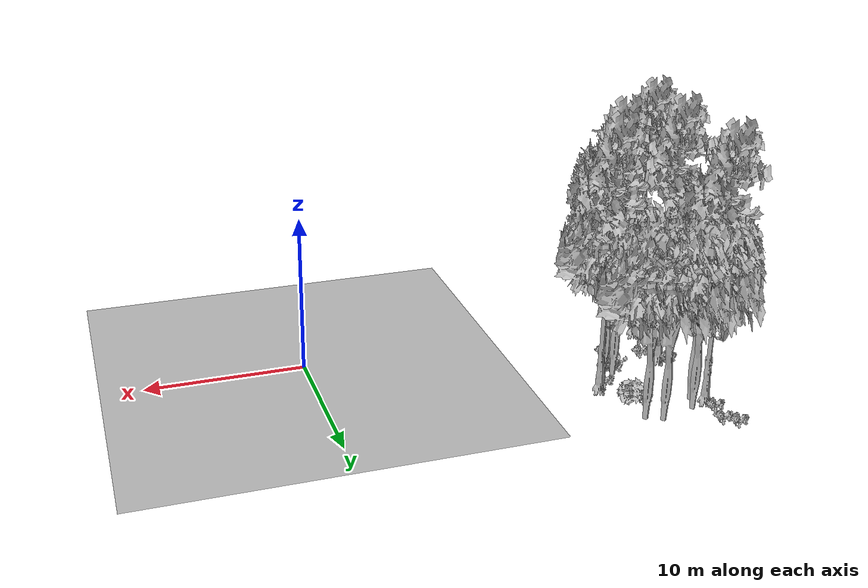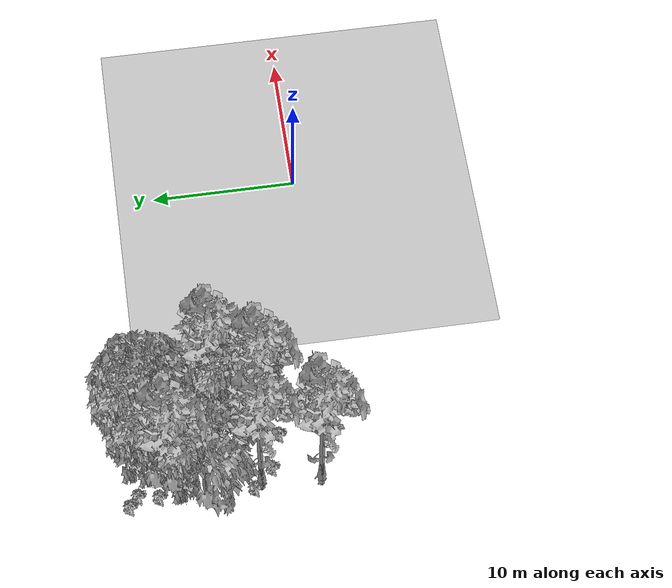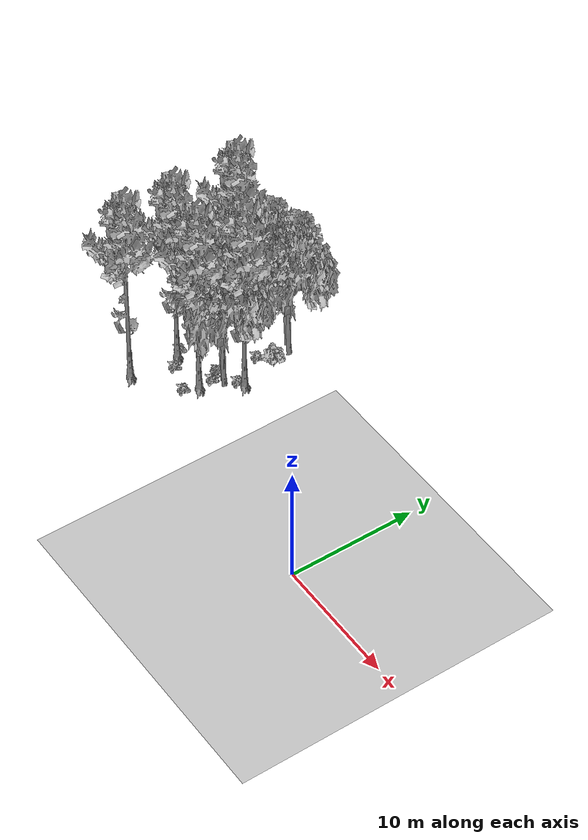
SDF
<sdf version="1.7">
 <world name="default">
  <model name="ground_plane">
   <static>1</static>
   <link name="link">
    <collision name="collision">
     <pose>-50 0 0 0 -0 0</pose>
     <geometry><plane><normal>0 0 1</normal><size>80 80</size></plane></geometry>
     <surface><contact><ode><min_depth>0.01</min_depth><max_vel>0</max_vel></ode></contact></surface>
    </collision>
    <visual name="grass">
     <cast_shadows>0</cast_shadows>
     <geometry>
      <mesh>
       <scale>0.46714285714285714 0.46714285714285714 0.1</scale>
       <uri>file://grass_plane/meshes/grass_plane.dae</uri>
      </mesh>
     </geometry>
    </visual>
   </link>
  </model>
  <model name="Tree 106">
   <static>1</static>
   <pose>-21.358131013902614 10.69060767864653 0 1.57079 -0 0</pose>
   <link name="link">
    <collision name="collision">
     <geometry><mesh><scale>3.5 5 3.5</scale><uri>model://tree_2/meshes/tree_2.obj</uri></mesh></geometry>
    </collision>
    <visual name="visual">
     <geometry><mesh><scale>3.5 5 3.5</scale><uri>model://tree_2/meshes/tree_2.obj</uri></mesh></geometry>
    </visual>
   </link>
  </model>
  <model name="Tree 143">
   <static>1</static>
   <pose>-20.93917351216423 11.698303390224545 0 1.57079 -0 0</pose>
   <link name="link">
    <collision name="collision">
     <geometry><mesh><scale>3.5 5 3.5</scale><uri>model://tree_2/meshes/tree_2.obj</uri></mesh></geometry>
    </collision>
    <visual name="visual">
     <geometry><mesh><scale>3.5 5 3.5</scale><uri>model://tree_2/meshes/tree_2.obj</uri></mesh></geometry>
    </visual>
   </link>
  </model>
  <model name="Tree 164">
   <static>1</static>
   <pose>-18.481539352923733 4.642743466984115 0 1.57079 -0 0</pose>
   <link name="link">
    <collision name="collision">
     <geometry><mesh><scale>3.5 5 3.5</scale><uri>model://tree_9/meshes/tree_9.obj</uri></mesh></geometry>
    </collision>
    <visual name="visual">
     <geometry><mesh><scale>3.5 5 3.5</scale><uri>model://tree_9/meshes/tree_9.obj</uri></mesh></geometry>
    </visual>
   </link>
  </model>
  <model name="Tree 169">
   <static>1</static>
   <pose>-17.733356640237787 11.9435540229981 0 1.57079 -0 0</pose>
   <link name="link">
    <collision name="collision">
     <geometry><mesh><scale>3.5 5 3.5</scale><uri>model://tree_2/meshes/tree_2.obj</uri></mesh></geometry>
    </collision>
    <visual name="visual">
     <geometry><mesh><scale>3.5 5 3.5</scale><uri>model://tree_2/meshes/tree_2.obj</uri></mesh></geometry>
    </visual>
   </link>
  </model>
  <model name="Tree 191">
   <static>1</static>
   <pose>-16.83402044761423 7.500579818338338 0 1.57079 -0 0</pose>
   <link name="link">
    <collision name="collision">
     <geometry><mesh><scale>3.5 5 3.5</scale><uri>model://tree_9/meshes/tree_9.obj</uri></mesh></geometry>
    </collision>
    <visual name="visual">
     <geometry><mesh><scale>3.5 5 3.5</scale><uri>model://tree_9/meshes/tree_9.obj</uri></mesh></geometry>
    </visual>
   </link>
  </model>
  <model name="Tree 274">
   <static>1</static>
   <pose>-22.10588778085596 5.123267739594851 0 1.57079 -0 0</pose>
   <link name="link">
    <collision name="collision">
     <geometry><mesh><scale>3.5 5 3.5</scale><uri>model://tree_9/meshes/tree_9.obj</uri></mesh></geometry>
    </collision>
    <visual name="visual">
     <geometry><mesh><scale>3.5 5 3.5</scale><uri>model://tree_9/meshes/tree_9.obj</uri></mesh></geometry>
    </visual>
   </link>
  </model>
  <model name="Tree 350">
   <static>1</static>
   <pose>-22.308923567028625 1.1818239093978917 0 1.57079 -0 0</pose>
   <link name="link">
    <collision name="collision">
     <geometry><mesh><scale>3.5 5 3.5</scale><uri>model://tree_9/meshes/tree_9.obj</uri></mesh></geometry>
    </collision>
    <visual name="visual">
     <geometry><mesh><scale>3.5 5 3.5</scale><uri>model://tree_9/meshes/tree_9.obj</uri></mesh></geometry>
    </visual>
   </link>
  </model>
  <model name="Tree 361">
   <static>1</static>
   <pose>-22.317225244419713 10.661142216027677 0 1.57079 -0 0</pose>
   <link name="link">
    <collision name="collision">
     <geometry><mesh><scale>3.5 5 3.5</scale><uri>model://tree_9/meshes/tree_9.obj</uri></mesh></geometry>
    </collision>
    <visual name="visual">
     <geometry><mesh><scale>3.5 5 3.5</scale><uri>model://tree_9/meshes/tree_9.obj</uri></mesh></geometry>
    </visual>
   </link>
  </model>
  <model name="Tree 381">
   <static>1</static>
   <pose>-17.750755130156023 6.257945125121779 0 1.57079 -0 0</pose>
   <link name="link">
    <collision name="collision">
     <geometry><mesh><scale>3.5 5 3.5</scale><uri>model://tree_2/meshes/tree_2.obj</uri></mesh></geometry>
    </collision>
    <visual name="visual">
     <geometry><mesh><scale>3.5 5 3.5</scale><uri>model://tree_2/meshes/tree_2.obj</uri></mesh></geometry>
    </visual>
   </link>
  </model>
  <model name="Tree 488">
   <static>1</static>
   <pose>-22.69206357322688 8.731514706365509 0 1.57079 -0 0</pose>
   <link name="link">
    <collision name="collision">
     <geometry><mesh><scale>3.5 5 3.5</scale><uri>model://tree_2/meshes/tree_2.obj</uri></mesh></geometry>
    </collision>
    <visual name="visual">
     <geometry><mesh><scale>3.5 5 3.5</scale><uri>model://tree_2/meshes/tree_2.obj</uri></mesh></geometry>
    </visual>
   </link>
  </model>
  <model name="Tree 516">
   <static>1</static>
   <pose>-18.66061226077367 12.404598995201454 0 1.57079 -0 0</pose>
   <link name="link">
    <collision name="collision">
     <geometry><mesh><scale>3.5 5 3.5</scale><uri>model://tree_2/meshes/tree_2.obj</uri></mesh></geometry>
    </collision>
    <visual name="visual">
     <geometry><mesh><scale>3.5 5 3.5</scale><uri>model://tree_2/meshes/tree_2.obj</uri></mesh></geometry>
    </visual>
   </link>
  </model>
  <model name="Tree 530">
   <static>1</static>
   <pose>-18.26895551390378 6.497014705363078 0 1.57079 -0 0</pose>
   <link name="link">
    <collision name="collision">
     <geometry><mesh><scale>3.5 5 3.5</scale><uri>model://tree_2/meshes/tree_2.obj</uri></mesh></geometry>
    </collision>
    <visual name="visual">
     <geometry><mesh><scale>3.5 5 3.5</scale><uri>model://tree_2/meshes/tree_2.obj</uri></mesh></geometry>
    </visual>
   </link>
  </model>
  <model name="Bush 62">
   <static>1</static>
   <pose>-22.5624738839581 5.563118399769856 0 1.57079 -0 0</pose>
   <link name="link">
    <collision name="collision">
     <geometry><mesh><scale>2 2 2</scale><uri>model://bush_2/meshes/bush_2.obj</uri></mesh></geometry>
     <surface><contact><collide_without_contact>false</collide_without_contact></contact></surface>
    </collision>
    <visual name="visual">
     <geometry><mesh><scale>2 2 2</scale><uri>model://bush_2/meshes/bush_2.obj</uri></mesh></geometry>
    </visual>
   </link>
  </model>
  <model name="Bush 64">
   <static>1</static>
   <pose>-19.002715506528364 3.5290355234669235 0 1.57079 -0 0</pose>
   <link name="link">
    <collision name="collision">
     <geometry><mesh><scale>2 2 2</scale><uri>model://bush_2/meshes/bush_2.obj</uri></mesh></geometry>
     <surface><contact><collide_without_contact>false</collide_without_contact></contact></surface>
    </collision>
    <visual name="visual">
     <geometry><mesh><scale>2 2 2</scale><uri>model://bush_2/meshes/bush_2.obj</uri></mesh></geometry>
    </visual>
   </link>
  </model>
  <model name="Bush 116">
   <static>1</static>
   <pose>-17.410680392016268 10.262985301577537 0 1.57079 -0 0</pose>
   <link name="link">
    <collision name="collision">
     <geometry><mesh><scale>2 2 2</scale><uri>model://bush_1/meshes/bush_1.obj</uri></mesh></geometry>
     <surface><contact><collide_without_contact>false</collide_without_contact></contact></surface>
    </collision>
    <visual name="visual">
     <geometry><mesh><scale>2 2 2</scale><uri>model://bush_1/meshes/bush_1.obj</uri></mesh></geometry>
    </visual>
   </link>
  </model>
  <model name="Bush 123">
   <static>1</static>
   <pose>-18.63898755099468 5.785465977299012 0 1.57079 -0 0</pose>
   <link name="link">
    <collision name="collision">
     <geometry><mesh><scale>2 2 2</scale><uri>model://bush_2/meshes/bush_2.obj</uri></mesh></geometry>
     <surface><contact><collide_without_contact>false</collide_without_contact></contact></surface>
    </collision>
    <visual name="visual">
     <geometry><mesh><scale>2 2 2</scale><uri>model://bush_2/meshes/bush_2.obj</uri></mesh></geometry>
    </visual>
   </link>
  </model>
  <model name="Bush 214">
   <static>1</static>
   <pose>-22.33526016963365 11.845400729126894 0 1.57079 -0 0</pose>
   <link name="link">
    <collision name="collision">
     <geometry><mesh><scale>2 2 2</scale><uri>model://bush_2/meshes/bush_2.obj</uri></mesh></geometry>
     <surface><contact><collide_without_contact>false</collide_without_contact></contact></surface>
    </collision>
    <visual name="visual">
     <geometry><mesh><scale>2 2 2</scale><uri>model://bush_2/meshes/bush_2.obj</uri></mesh></geometry>
    </visual>
   </link>
  </model>
  <model name="Bush 293">
   <static>1</static>
   <pose>-22.079074002552623 13.208594186565456 0 1.57079 -0 0</pose>
   <link name="link">
    <collision name="collision">
     <geometry><mesh><scale>2 2 2</scale><uri>model://bush_2/meshes/bush_2.obj</uri></mesh></geometry>
     <surface><contact><collide_without_contact>false</collide_without_contact></contact></surface>
    </collision>
    <visual name="visual">
     <geometry><mesh><scale>2 2 2</scale><uri>model://bush_2/meshes/bush_2.obj</uri></mesh></geometry>
    </visual>
   </link>
  </model>
  <model name="Bush 365">
   <static>1</static>
   <pose>-17.37356934884748 7.199207754173926 0 1.57079 -0 0</pose>
   <link name="link">
    <collision name="collision">
     <geometry><mesh><scale>2 2 2</scale><uri>model://bush_2/meshes/bush_2.obj</uri></mesh></geometry>
     <surface><contact><collide_without_contact>false</collide_without_contact></contact></surface>
    </collision>
    <visual name="visual">
     <geometry><mesh><scale>2 2 2</scale><uri>model://bush_2/meshes/bush_2.obj</uri></mesh></geometry>
    </visual>
   </link>
  </model>
  <model name="Bush 418">
   <static>1</static>
   <pose>-21.283838318252464 4.276399438660327 0 1.57079 -0 0</pose>
   <link name="link">
    <collision name="collision">
     <geometry><mesh><scale>2 2 2</scale><uri>model://bush_2/meshes/bush_2.obj</uri></mesh></geometry>
     <surface><contact><collide_without_contact>false</collide_without_contact></contact></surface>
    </collision>
    <visual name="visual">
     <geometry><mesh><scale>2 2 2</scale><uri>model://bush_2/meshes/bush_2.obj</uri></mesh></geometry>
    </visual>
   </link>
  </model>
  <model name="Bush 431">
   <static>1</static>
   <pose>-22.751369932633533 13.814999591215162 0 1.57079 -0 0</pose>
   <link name="link">
    <collision name="collision">
     <geometry><mesh><scale>2 2 2</scale><uri>model://bush_2/meshes/bush_2.obj</uri></mesh></geometry>
     <surface><contact><collide_without_contact>false</collide_without_contact></contact></surface>
    </collision>
    <visual name="visual">
     <geometry><mesh><scale>2 2 2</scale><uri>model://bush_2/meshes/bush_2.obj</uri></mesh></geometry>
    </visual>
   </link>
  </model>
  <model name="Bush 540">
   <static>1</static>
   <pose>-18.505003567108524 6.1191317103599445 0 1.57079 -0 0</pose>
   <link name="link">
    <collision name="collision">
     <geometry><mesh><scale>2 2 2</scale><uri>model://bush_4/meshes/bush_4.obj</uri></mesh></geometry>
     <surface><contact><collide_without_contact>false</collide_without_contact></contact></surface>
    </collision>
    <visual name="visual">
     <geometry><mesh><scale>2 2 2</scale><uri>model://bush_4/meshes/bush_4.obj</uri></mesh></geometry>
    </visual>
   </link>
  </model>
  <model name="Bush 545">
   <static>1</static>
   <pose>-18.686650496050696 9.762154922020173 0 1.57079 -0 0</pose>
   <link name="link">
    <collision name="collision">
     <geometry><mesh><scale>2 2 2</scale><uri>model://bush_2/meshes/bush_2.obj</uri></mesh></geometry>
     <surface><contact><collide_without_contact>false</collide_without_contact></contact></surface>
    </collision>
    <visual name="visual">
     <geometry><mesh><scale>2 2 2</scale><uri>model://bush_2/meshes/bush_2.obj</uri></mesh></geometry>
    </visual>
   </link>
  </model>
 </world>
</sdf>
